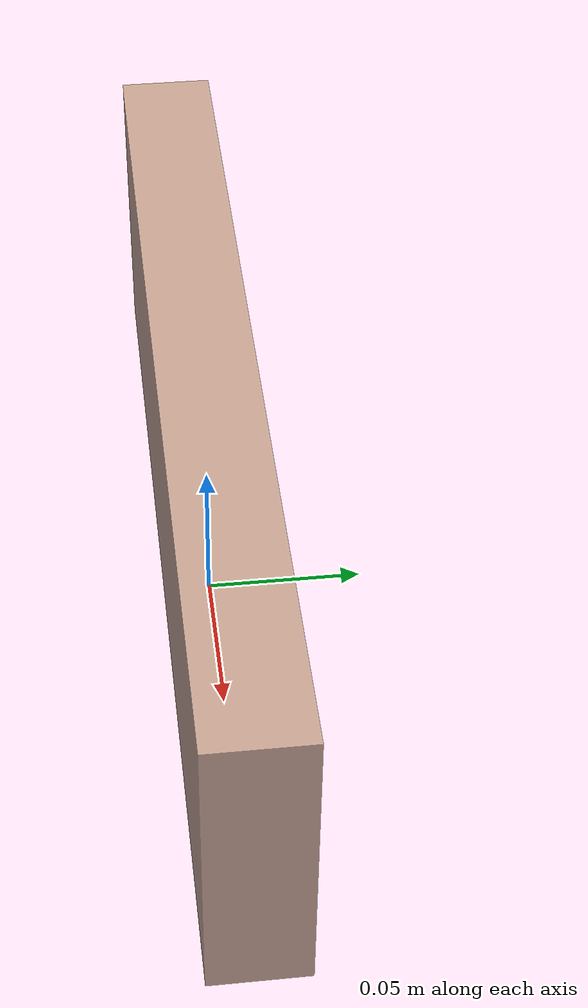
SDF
<sdf version='1.6'>
  <model name='wall'>

  <link name="wall">
  <pose> 0 0 0 0 0 0</pose>

  <visual name='visual'>
    <pose> 0 0 0.05 0 0 0 </pose>
    <geometry>
      <box>
       <size>0.3 0.03 0.1</size>
      </box>
    </geometry>
    <material>
      <diffuse>0.75 0.6 0.5 0.8</diffuse>
    </material>
  </visual>

  <collision name='collision'>
    <pose> 0 0 0.05 0 0 0 </pose>
    <geometry>
      <box>
       <size>0.3 0.03 0.1</size>
      </box>
    </geometry>

    <surface>
      <friction>
      <ode>
        <mu>0.5</mu>
        <mu2>0.5</mu2>
      </ode>
      </friction>
    </surface>
  </collision>
  </link>

  </model>
</sdf>
